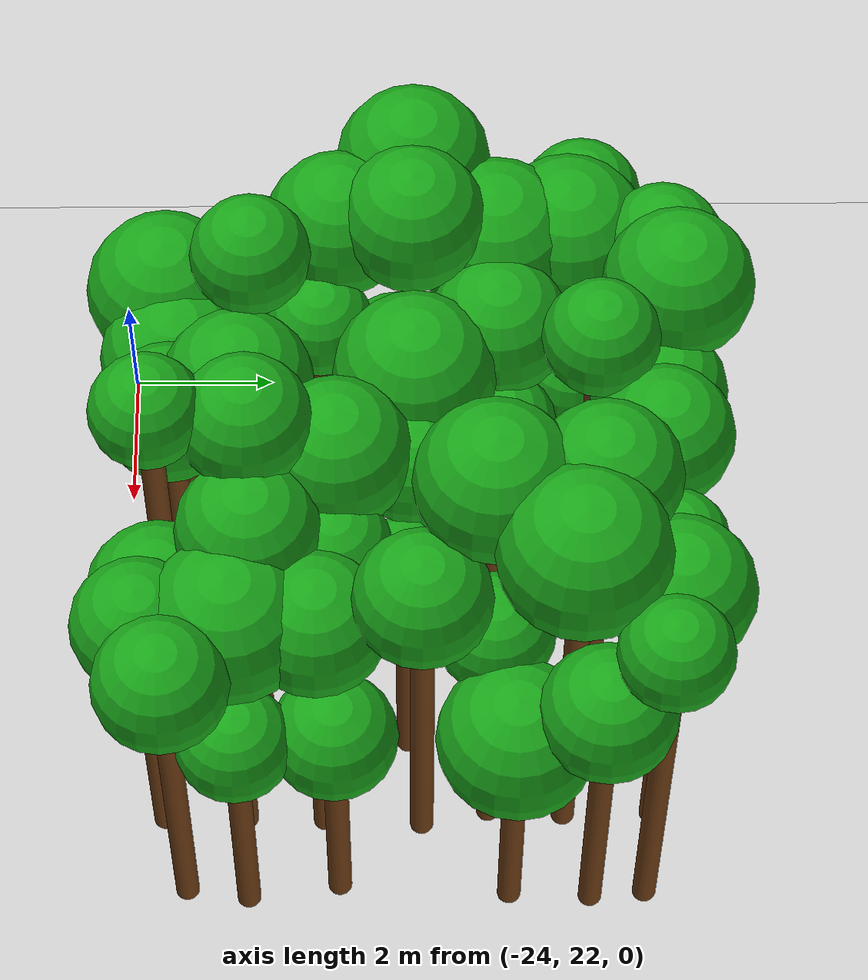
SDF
<sdf version="1.6">
 <world name="forest_world">
  <include><uri>model://sun</uri></include>
  <include><uri>model://ground_plane</uri></include>
  <model name="tree_381_trunk">
   <static>true</static>
   <pose>-23.24 26.11 3.05 0 0 0</pose>
   <link name="link">
    <collision name="collision">
     <geometry><cylinder><radius>0.16</radius><length>6.09</length></cylinder></geometry>
    </collision>
    <visual name="visual">
     <geometry><cylinder><radius>0.16</radius><length>6.09</length></cylinder></geometry>
     <material><ambient>0.35 0.20 0.05 1</ambient><diffuse>0.45 0.25 0.08 1</diffuse></material>
    </visual>
   </link>
  </model>
  <model name="tree_381_leaf">
   <static>true</static>
   <pose>-23.24 26.11 6.71 0 0 0</pose>
   <link name="link">
    <collision name="collision"><geometry><sphere><radius>1.03</radius></sphere></geometry></collision>
    <visual name="visual">
     <geometry><sphere><radius>1.03</radius></sphere></geometry>
     <material><ambient>0.05 0.45 0.05 1</ambient><diffuse>0.10 0.65 0.10 1</diffuse></material>
    </visual>
   </link>
  </model>
  <model name="tree_383_trunk">
   <static>true</static>
   <pose>-23.26 28.36 2.67 0 0 0</pose>
   <link name="link">
    <collision name="collision">
     <geometry><cylinder><radius>0.16</radius><length>5.34</length></cylinder></geometry>
    </collision>
    <visual name="visual">
     <geometry><cylinder><radius>0.16</radius><length>5.34</length></cylinder></geometry>
     <material><ambient>0.35 0.20 0.05 1</ambient><diffuse>0.45 0.25 0.08 1</diffuse></material>
    </visual>
   </link>
  </model>
  <model name="tree_383_leaf">
   <static>true</static>
   <pose>-23.26 28.36 5.83 0 0 0</pose>
   <link name="link">
    <collision name="collision"><geometry><sphere><radius>0.81</radius></sphere></geometry></collision>
    <visual name="visual">
     <geometry><sphere><radius>0.81</radius></sphere></geometry>
     <material><ambient>0.05 0.45 0.05 1</ambient><diffuse>0.10 0.65 0.10 1</diffuse></material>
    </visual>
   </link>
  </model>
  <model name="tree_433_trunk">
   <static>true</static>
   <pose>-22.16 22.80 2.35 0 0 0</pose>
   <link name="link">
    <collision name="collision">
     <geometry><cylinder><radius>0.16</radius><length>4.69</length></cylinder></geometry>
    </collision>
    <visual name="visual">
     <geometry><cylinder><radius>0.16</radius><length>4.69</length></cylinder></geometry>
     <material><ambient>0.35 0.20 0.05 1</ambient><diffuse>0.45 0.25 0.08 1</diffuse></material>
    </visual>
   </link>
  </model>
  <model name="tree_433_leaf">
   <static>true</static>
   <pose>-22.16 22.80 5.33 0 0 0</pose>
   <link name="link">
    <collision name="collision"><geometry><sphere><radius>1.07</radius></sphere></geometry></collision>
    <visual name="visual">
     <geometry><sphere><radius>1.07</radius></sphere></geometry>
     <material><ambient>0.05 0.45 0.05 1</ambient><diffuse>0.10 0.65 0.10 1</diffuse></material>
    </visual>
   </link>
  </model>
  <model name="tree_434_trunk">
   <static>true</static>
   <pose>-22.43 24.03 2.61 0 0 0</pose>
   <link name="link">
    <collision name="collision">
     <geometry><cylinder><radius>0.16</radius><length>5.23</length></cylinder></geometry>
    </collision>
    <visual name="visual">
     <geometry><cylinder><radius>0.16</radius><length>5.23</length></cylinder></geometry>
     <material><ambient>0.35 0.20 0.05 1</ambient><diffuse>0.45 0.25 0.08 1</diffuse></material>
    </visual>
   </link>
  </model>
  <model name="tree_434_leaf">
   <static>true</static>
   <pose>-22.43 24.03 5.72 0 0 0</pose>
   <link name="link">
    <collision name="collision"><geometry><sphere><radius>0.82</radius></sphere></geometry></collision>
    <visual name="visual">
     <geometry><sphere><radius>0.82</radius></sphere></geometry>
     <material><ambient>0.05 0.45 0.05 1</ambient><diffuse>0.10 0.65 0.10 1</diffuse></material>
    </visual>
   </link>
  </model>
  <model name="tree_435_trunk">
   <static>true</static>
   <pose>-22.34 25.12 3.02 0 0 0</pose>
   <link name="link">
    <collision name="collision">
     <geometry><cylinder><radius>0.16</radius><length>6.03</length></cylinder></geometry>
    </collision>
    <visual name="visual">
     <geometry><cylinder><radius>0.16</radius><length>6.03</length></cylinder></geometry>
     <material><ambient>0.35 0.20 0.05 1</ambient><diffuse>0.45 0.25 0.08 1</diffuse></material>
    </visual>
   </link>
  </model>
  <model name="tree_435_leaf">
   <static>true</static>
   <pose>-22.34 25.12 6.61 0 0 0</pose>
   <link name="link">
    <collision name="collision"><geometry><sphere><radius>0.96</radius></sphere></geometry></collision>
    <visual name="visual">
     <geometry><sphere><radius>0.96</radius></sphere></geometry>
     <material><ambient>0.05 0.45 0.05 1</ambient><diffuse>0.10 0.65 0.10 1</diffuse></material>
    </visual>
   </link>
  </model>
  <model name="tree_436_trunk">
   <static>true</static>
   <pose>-22.13 26.09 3.23 0 0 0</pose>
   <link name="link">
    <collision name="collision">
     <geometry><cylinder><radius>0.16</radius><length>6.46</length></cylinder></geometry>
    </collision>
    <visual name="visual">
     <geometry><cylinder><radius>0.16</radius><length>6.46</length></cylinder></geometry>
     <material><ambient>0.35 0.20 0.05 1</ambient><diffuse>0.45 0.25 0.08 1</diffuse></material>
    </visual>
   </link>
  </model>
  <model name="tree_436_leaf">
   <static>true</static>
   <pose>-22.13 26.09 7.03 0 0 0</pose>
   <link name="link">
    <collision name="collision"><geometry><sphere><radius>0.96</radius></sphere></geometry></collision>
    <visual name="visual">
     <geometry><sphere><radius>0.96</radius></sphere></geometry>
     <material><ambient>0.05 0.45 0.05 1</ambient><diffuse>0.10 0.65 0.10 1</diffuse></material>
    </visual>
   </link>
  </model>
  <model name="tree_437_trunk">
   <static>true</static>
   <pose>-22.31 27.19 2.79 0 0 0</pose>
   <link name="link">
    <collision name="collision">
     <geometry><cylinder><radius>0.16</radius><length>5.58</length></cylinder></geometry>
    </collision>
    <visual name="visual">
     <geometry><cylinder><radius>0.16</radius><length>5.58</length></cylinder></geometry>
     <material><ambient>0.35 0.20 0.05 1</ambient><diffuse>0.45 0.25 0.08 1</diffuse></material>
    </visual>
   </link>
  </model>
  <model name="tree_437_leaf">
   <static>true</static>
   <pose>-22.31 27.19 6.24 0 0 0</pose>
   <link name="link">
    <collision name="collision"><geometry><sphere><radius>1.10</radius></sphere></geometry></collision>
    <visual name="visual">
     <geometry><sphere><radius>1.10</radius></sphere></geometry>
     <material><ambient>0.05 0.45 0.05 1</ambient><diffuse>0.10 0.65 0.10 1</diffuse></material>
    </visual>
   </link>
  </model>
  <model name="tree_438_trunk">
   <static>true</static>
   <pose>-22.47 28.15 2.74 0 0 0</pose>
   <link name="link">
    <collision name="collision">
     <geometry><cylinder><radius>0.16</radius><length>5.47</length></cylinder></geometry>
    </collision>
    <visual name="visual">
     <geometry><cylinder><radius>0.16</radius><length>5.47</length></cylinder></geometry>
     <material><ambient>0.35 0.20 0.05 1</ambient><diffuse>0.45 0.25 0.08 1</diffuse></material>
    </visual>
   </link>
  </model>
  <model name="tree_438_leaf">
   <static>true</static>
   <pose>-22.47 28.15 6.12 0 0 0</pose>
   <link name="link">
    <collision name="collision"><geometry><sphere><radius>1.08</radius></sphere></geometry></collision>
    <visual name="visual">
     <geometry><sphere><radius>1.08</radius></sphere></geometry>
     <material><ambient>0.05 0.45 0.05 1</ambient><diffuse>0.10 0.65 0.10 1</diffuse></material>
    </visual>
   </link>
  </model>
  <model name="tree_439_trunk">
   <static>true</static>
   <pose>-22.12 29.37 2.97 0 0 0</pose>
   <link name="link">
    <collision name="collision">
     <geometry><cylinder><radius>0.16</radius><length>5.93</length></cylinder></geometry>
    </collision>
    <visual name="visual">
     <geometry><cylinder><radius>0.16</radius><length>5.93</length></cylinder></geometry>
     <material><ambient>0.35 0.20 0.05 1</ambient><diffuse>0.45 0.25 0.08 1</diffuse></material>
    </visual>
   </link>
  </model>
  <model name="tree_439_leaf">
   <static>true</static>
   <pose>-22.12 29.37 6.42 0 0 0</pose>
   <link name="link">
    <collision name="collision"><geometry><sphere><radius>0.81</radius></sphere></geometry></collision>
    <visual name="visual">
     <geometry><sphere><radius>0.81</radius></sphere></geometry>
     <material><ambient>0.05 0.45 0.05 1</ambient><diffuse>0.10 0.65 0.10 1</diffuse></material>
    </visual>
   </link>
  </model>
  <model name="tree_488_trunk">
   <static>true</static>
   <pose>-21.22 22.96 2.26 0 0 0</pose>
   <link name="link">
    <collision name="collision">
     <geometry><cylinder><radius>0.16</radius><length>4.51</length></cylinder></geometry>
    </collision>
    <visual name="visual">
     <geometry><cylinder><radius>0.16</radius><length>4.51</length></cylinder></geometry>
     <material><ambient>0.35 0.20 0.05 1</ambient><diffuse>0.45 0.25 0.08 1</diffuse></material>
    </visual>
   </link>
  </model>
  <model name="tree_488_leaf">
   <static>true</static>
   <pose>-21.22 22.96 5.13 0 0 0</pose>
   <link name="link">
    <collision name="collision"><geometry><sphere><radius>1.03</radius></sphere></geometry></collision>
    <visual name="visual">
     <geometry><sphere><radius>1.03</radius></sphere></geometry>
     <material><ambient>0.05 0.45 0.05 1</ambient><diffuse>0.10 0.65 0.10 1</diffuse></material>
    </visual>
   </link>
  </model>
  <model name="tree_489_trunk">
   <static>true</static>
   <pose>-21.35 24.01 3.45 0 0 0</pose>
   <link name="link">
    <collision name="collision">
     <geometry><cylinder><radius>0.16</radius><length>6.91</length></cylinder></geometry>
    </collision>
    <visual name="visual">
     <geometry><cylinder><radius>0.16</radius><length>6.91</length></cylinder></geometry>
     <material><ambient>0.35 0.20 0.05 1</ambient><diffuse>0.45 0.25 0.08 1</diffuse></material>
    </visual>
   </link>
  </model>
  <model name="tree_489_leaf">
   <static>true</static>
   <pose>-21.35 24.01 7.37 0 0 0</pose>
   <link name="link">
    <collision name="collision"><geometry><sphere><radius>0.78</radius></sphere></geometry></collision>
    <visual name="visual">
     <geometry><sphere><radius>0.78</radius></sphere></geometry>
     <material><ambient>0.05 0.45 0.05 1</ambient><diffuse>0.10 0.65 0.10 1</diffuse></material>
    </visual>
   </link>
  </model>
  <model name="tree_490_trunk">
   <static>true</static>
   <pose>-21.21 24.87 2.78 0 0 0</pose>
   <link name="link">
    <collision name="collision">
     <geometry><cylinder><radius>0.16</radius><length>5.56</length></cylinder></geometry>
    </collision>
    <visual name="visual">
     <geometry><cylinder><radius>0.16</radius><length>5.56</length></cylinder></geometry>
     <material><ambient>0.35 0.20 0.05 1</ambient><diffuse>0.45 0.25 0.08 1</diffuse></material>
    </visual>
   </link>
  </model>
  <model name="tree_490_leaf">
   <static>true</static>
   <pose>-21.21 24.87 5.98 0 0 0</pose>
   <link name="link">
    <collision name="collision"><geometry><sphere><radius>0.70</radius></sphere></geometry></collision>
    <visual name="visual">
     <geometry><sphere><radius>0.70</radius></sphere></geometry>
     <material><ambient>0.05 0.45 0.05 1</ambient><diffuse>0.10 0.65 0.10 1</diffuse></material>
    </visual>
   </link>
  </model>
  <model name="tree_491_trunk">
   <static>true</static>
   <pose>-21.13 25.93 2.20 0 0 0</pose>
   <link name="link">
    <collision name="collision">
     <geometry><cylinder><radius>0.16</radius><length>4.39</length></cylinder></geometry>
    </collision>
    <visual name="visual">
     <geometry><cylinder><radius>0.16</radius><length>4.39</length></cylinder></geometry>
     <material><ambient>0.35 0.20 0.05 1</ambient><diffuse>0.45 0.25 0.08 1</diffuse></material>
    </visual>
   </link>
  </model>
  <model name="tree_491_leaf">
   <static>true</static>
   <pose>-21.13 25.93 5.00 0 0 0</pose>
   <link name="link">
    <collision name="collision"><geometry><sphere><radius>1.01</radius></sphere></geometry></collision>
    <visual name="visual">
     <geometry><sphere><radius>1.01</radius></sphere></geometry>
     <material><ambient>0.05 0.45 0.05 1</ambient><diffuse>0.10 0.65 0.10 1</diffuse></material>
    </visual>
   </link>
  </model>
  <model name="tree_492_trunk">
   <static>true</static>
   <pose>-21.03 27.20 2.80 0 0 0</pose>
   <link name="link">
    <collision name="collision">
     <geometry><cylinder><radius>0.16</radius><length>5.60</length></cylinder></geometry>
    </collision>
    <visual name="visual">
     <geometry><cylinder><radius>0.16</radius><length>5.60</length></cylinder></geometry>
     <material><ambient>0.35 0.20 0.05 1</ambient><diffuse>0.45 0.25 0.08 1</diffuse></material>
    </visual>
   </link>
  </model>
  <model name="tree_492_leaf">
   <static>true</static>
   <pose>-21.03 27.20 6.16 0 0 0</pose>
   <link name="link">
    <collision name="collision"><geometry><sphere><radius>0.93</radius></sphere></geometry></collision>
    <visual name="visual">
     <geometry><sphere><radius>0.93</radius></sphere></geometry>
     <material><ambient>0.05 0.45 0.05 1</ambient><diffuse>0.10 0.65 0.10 1</diffuse></material>
    </visual>
   </link>
  </model>
  <model name="tree_493_trunk">
   <static>true</static>
   <pose>-21.18 28.23 2.16 0 0 0</pose>
   <link name="link">
    <collision name="collision">
     <geometry><cylinder><radius>0.16</radius><length>4.31</length></cylinder></geometry>
    </collision>
    <visual name="visual">
     <geometry><cylinder><radius>0.16</radius><length>4.31</length></cylinder></geometry>
     <material><ambient>0.35 0.20 0.05 1</ambient><diffuse>0.45 0.25 0.08 1</diffuse></material>
    </visual>
   </link>
  </model>
  <model name="tree_493_leaf">
   <static>true</static>
   <pose>-21.18 28.23 4.76 0 0 0</pose>
   <link name="link">
    <collision name="collision"><geometry><sphere><radius>0.75</radius></sphere></geometry></collision>
    <visual name="visual">
     <geometry><sphere><radius>0.75</radius></sphere></geometry>
     <material><ambient>0.05 0.45 0.05 1</ambient><diffuse>0.10 0.65 0.10 1</diffuse></material>
    </visual>
   </link>
  </model>
  <model name="tree_494_trunk">
   <static>true</static>
   <pose>-21.14 29.50 3.18 0 0 0</pose>
   <link name="link">
    <collision name="collision">
     <geometry><cylinder><radius>0.16</radius><length>6.37</length></cylinder></geometry>
    </collision>
    <visual name="visual">
     <geometry><cylinder><radius>0.16</radius><length>6.37</length></cylinder></geometry>
     <material><ambient>0.35 0.20 0.05 1</ambient><diffuse>0.45 0.25 0.08 1</diffuse></material>
    </visual>
   </link>
  </model>
  <model name="tree_494_leaf">
   <static>true</static>
   <pose>-21.14 29.50 6.96 0 0 0</pose>
   <link name="link">
    <collision name="collision"><geometry><sphere><radius>0.99</radius></sphere></geometry></collision>
    <visual name="visual">
     <geometry><sphere><radius>0.99</radius></sphere></geometry>
     <material><ambient>0.05 0.45 0.05 1</ambient><diffuse>0.10 0.65 0.10 1</diffuse></material>
    </visual>
   </link>
  </model>
  <model name="tree_543_trunk">
   <static>true</static>
   <pose>-20.00 22.92 2.60 0 0 0</pose>
   <link name="link">
    <collision name="collision">
     <geometry><cylinder><radius>0.16</radius><length>5.19</length></cylinder></geometry>
    </collision>
    <visual name="visual">
     <geometry><cylinder><radius>0.16</radius><length>5.19</length></cylinder></geometry>
     <material><ambient>0.35 0.20 0.05 1</ambient><diffuse>0.45 0.25 0.08 1</diffuse></material>
    </visual>
   </link>
  </model>
  <model name="tree_543_leaf">
   <static>true</static>
   <pose>-20.00 22.92 5.74 0 0 0</pose>
   <link name="link">
    <collision name="collision"><geometry><sphere><radius>0.92</radius></sphere></geometry></collision>
    <visual name="visual">
     <geometry><sphere><radius>0.92</radius></sphere></geometry>
     <material><ambient>0.05 0.45 0.05 1</ambient><diffuse>0.10 0.65 0.10 1</diffuse></material>
    </visual>
   </link>
  </model>
  <model name="tree_544_trunk">
   <static>true</static>
   <pose>-20.03 23.84 2.88 0 0 0</pose>
   <link name="link">
    <collision name="collision">
     <geometry><cylinder><radius>0.16</radius><length>5.77</length></cylinder></geometry>
    </collision>
    <visual name="visual">
     <geometry><cylinder><radius>0.16</radius><length>5.77</length></cylinder></geometry>
     <material><ambient>0.35 0.20 0.05 1</ambient><diffuse>0.45 0.25 0.08 1</diffuse></material>
    </visual>
   </link>
  </model>
  <model name="tree_544_leaf">
   <static>true</static>
   <pose>-20.03 23.84 6.36 0 0 0</pose>
   <link name="link">
    <collision name="collision"><geometry><sphere><radius>0.99</radius></sphere></geometry></collision>
    <visual name="visual">
     <geometry><sphere><radius>0.99</radius></sphere></geometry>
     <material><ambient>0.05 0.45 0.05 1</ambient><diffuse>0.10 0.65 0.10 1</diffuse></material>
    </visual>
   </link>
  </model>
  <model name="tree_545_trunk">
   <static>true</static>
   <pose>-20.01 24.87 2.13 0 0 0</pose>
   <link name="link">
    <collision name="collision">
     <geometry><cylinder><radius>0.16</radius><length>4.26</length></cylinder></geometry>
    </collision>
    <visual name="visual">
     <geometry><cylinder><radius>0.16</radius><length>4.26</length></cylinder></geometry>
     <material><ambient>0.35 0.20 0.05 1</ambient><diffuse>0.45 0.25 0.08 1</diffuse></material>
    </visual>
   </link>
  </model>
  <model name="tree_545_leaf">
   <static>true</static>
   <pose>-20.01 24.87 4.71 0 0 0</pose>
   <link name="link">
    <collision name="collision"><geometry><sphere><radius>0.75</radius></sphere></geometry></collision>
    <visual name="visual">
     <geometry><sphere><radius>0.75</radius></sphere></geometry>
     <material><ambient>0.05 0.45 0.05 1</ambient><diffuse>0.10 0.65 0.10 1</diffuse></material>
    </visual>
   </link>
  </model>
  <model name="tree_546_trunk">
   <static>true</static>
   <pose>-20.26 26.11 2.80 0 0 0</pose>
   <link name="link">
    <collision name="collision">
     <geometry><cylinder><radius>0.16</radius><length>5.60</length></cylinder></geometry>
    </collision>
    <visual name="visual">
     <geometry><cylinder><radius>0.16</radius><length>5.60</length></cylinder></geometry>
     <material><ambient>0.35 0.20 0.05 1</ambient><diffuse>0.45 0.25 0.08 1</diffuse></material>
    </visual>
   </link>
  </model>
  <model name="tree_546_leaf">
   <static>true</static>
   <pose>-20.26 26.11 6.24 0 0 0</pose>
   <link name="link">
    <collision name="collision"><geometry><sphere><radius>1.07</radius></sphere></geometry></collision>
    <visual name="visual">
     <geometry><sphere><radius>1.07</radius></sphere></geometry>
     <material><ambient>0.05 0.45 0.05 1</ambient><diffuse>0.10 0.65 0.10 1</diffuse></material>
    </visual>
   </link>
  </model>
  <model name="tree_547_trunk">
   <static>true</static>
   <pose>-20.02 27.16 2.35 0 0 0</pose>
   <link name="link">
    <collision name="collision">
     <geometry><cylinder><radius>0.16</radius><length>4.70</length></cylinder></geometry>
    </collision>
    <visual name="visual">
     <geometry><cylinder><radius>0.16</radius><length>4.70</length></cylinder></geometry>
     <material><ambient>0.35 0.20 0.05 1</ambient><diffuse>0.45 0.25 0.08 1</diffuse></material>
    </visual>
   </link>
  </model>
  <model name="tree_547_leaf">
   <static>true</static>
   <pose>-20.02 27.16 5.20 0 0 0</pose>
   <link name="link">
    <collision name="collision"><geometry><sphere><radius>0.83</radius></sphere></geometry></collision>
    <visual name="visual">
     <geometry><sphere><radius>0.83</radius></sphere></geometry>
     <material><ambient>0.05 0.45 0.05 1</ambient><diffuse>0.10 0.65 0.10 1</diffuse></material>
    </visual>
   </link>
  </model>
  <model name="tree_548_trunk">
   <static>true</static>
   <pose>-20.11 28.46 3.43 0 0 0</pose>
   <link name="link">
    <collision name="collision">
     <geometry><cylinder><radius>0.16</radius><length>6.85</length></cylinder></geometry>
    </collision>
    <visual name="visual">
     <geometry><cylinder><radius>0.16</radius><length>6.85</length></cylinder></geometry>
     <material><ambient>0.35 0.20 0.05 1</ambient><diffuse>0.45 0.25 0.08 1</diffuse></material>
    </visual>
   </link>
  </model>
  <model name="tree_548_leaf">
   <static>true</static>
   <pose>-20.11 28.46 7.31 0 0 0</pose>
   <link name="link">
    <collision name="collision"><geometry><sphere><radius>0.76</radius></sphere></geometry></collision>
    <visual name="visual">
     <geometry><sphere><radius>0.76</radius></sphere></geometry>
     <material><ambient>0.05 0.45 0.05 1</ambient><diffuse>0.10 0.65 0.10 1</diffuse></material>
    </visual>
   </link>
  </model>
  <model name="tree_549_trunk">
   <static>true</static>
   <pose>-20.05 29.25 2.77 0 0 0</pose>
   <link name="link">
    <collision name="collision">
     <geometry><cylinder><radius>0.16</radius><length>5.55</length></cylinder></geometry>
    </collision>
    <visual name="visual">
     <geometry><cylinder><radius>0.16</radius><length>5.55</length></cylinder></geometry>
     <material><ambient>0.35 0.20 0.05 1</ambient><diffuse>0.45 0.25 0.08 1</diffuse></material>
    </visual>
   </link>
  </model>
  <model name="tree_549_leaf">
   <static>true</static>
   <pose>-20.05 29.25 6.09 0 0 0</pose>
   <link name="link">
    <collision name="collision"><geometry><sphere><radius>0.90</radius></sphere></geometry></collision>
    <visual name="visual">
     <geometry><sphere><radius>0.90</radius></sphere></geometry>
     <material><ambient>0.05 0.45 0.05 1</ambient><diffuse>0.10 0.65 0.10 1</diffuse></material>
    </visual>
   </link>
  </model>
  <model name="tree_598_trunk">
   <static>true</static>
   <pose>-18.99 22.76 3.49 0 0 0</pose>
   <link name="link">
    <collision name="collision">
     <geometry><cylinder><radius>0.16</radius><length>6.99</length></cylinder></geometry>
    </collision>
    <visual name="visual">
     <geometry><cylinder><radius>0.16</radius><length>6.99</length></cylinder></geometry>
     <material><ambient>0.35 0.20 0.05 1</ambient><diffuse>0.45 0.25 0.08 1</diffuse></material>
    </visual>
   </link>
  </model>
  <model name="tree_598_leaf">
   <static>true</static>
   <pose>-18.99 22.76 7.43 0 0 0</pose>
   <link name="link">
    <collision name="collision"><geometry><sphere><radius>0.74</radius></sphere></geometry></collision>
    <visual name="visual">
     <geometry><sphere><radius>0.74</radius></sphere></geometry>
     <material><ambient>0.05 0.45 0.05 1</ambient><diffuse>0.10 0.65 0.10 1</diffuse></material>
    </visual>
   </link>
  </model>
  <model name="tree_599_trunk">
   <static>true</static>
   <pose>-19.00 23.97 3.32 0 0 0</pose>
   <link name="link">
    <collision name="collision">
     <geometry><cylinder><radius>0.16</radius><length>6.64</length></cylinder></geometry>
    </collision>
    <visual name="visual">
     <geometry><cylinder><radius>0.16</radius><length>6.64</length></cylinder></geometry>
     <material><ambient>0.35 0.20 0.05 1</ambient><diffuse>0.45 0.25 0.08 1</diffuse></material>
    </visual>
   </link>
  </model>
  <model name="tree_599_leaf">
   <static>true</static>
   <pose>-19.00 23.97 7.16 0 0 0</pose>
   <link name="link">
    <collision name="collision"><geometry><sphere><radius>0.87</radius></sphere></geometry></collision>
    <visual name="visual">
     <geometry><sphere><radius>0.87</radius></sphere></geometry>
     <material><ambient>0.05 0.45 0.05 1</ambient><diffuse>0.10 0.65 0.10 1</diffuse></material>
    </visual>
   </link>
  </model>
  <model name="tree_600_trunk">
   <static>true</static>
   <pose>-18.99 25.10 2.89 0 0 0</pose>
   <link name="link">
    <collision name="collision">
     <geometry><cylinder><radius>0.16</radius><length>5.79</length></cylinder></geometry>
    </collision>
    <visual name="visual">
     <geometry><cylinder><radius>0.16</radius><length>5.79</length></cylinder></geometry>
     <material><ambient>0.35 0.20 0.05 1</ambient><diffuse>0.45 0.25 0.08 1</diffuse></material>
    </visual>
   </link>
  </model>
  <model name="tree_600_leaf">
   <static>true</static>
   <pose>-18.99 25.10 6.38 0 0 0</pose>
   <link name="link">
    <collision name="collision"><geometry><sphere><radius>0.99</radius></sphere></geometry></collision>
    <visual name="visual">
     <geometry><sphere><radius>0.99</radius></sphere></geometry>
     <material><ambient>0.05 0.45 0.05 1</ambient><diffuse>0.10 0.65 0.10 1</diffuse></material>
    </visual>
   </link>
  </model>
  <model name="tree_601_trunk">
   <static>true</static>
   <pose>-19.14 26.06 2.70 0 0 0</pose>
   <link name="link">
    <collision name="collision">
     <geometry><cylinder><radius>0.16</radius><length>5.40</length></cylinder></geometry>
    </collision>
    <visual name="visual">
     <geometry><cylinder><radius>0.16</radius><length>5.40</length></cylinder></geometry>
     <material><ambient>0.35 0.20 0.05 1</ambient><diffuse>0.45 0.25 0.08 1</diffuse></material>
    </visual>
   </link>
  </model>
  <model name="tree_601_leaf">
   <static>true</static>
   <pose>-19.14 26.06 5.88 0 0 0</pose>
   <link name="link">
    <collision name="collision"><geometry><sphere><radius>0.80</radius></sphere></geometry></collision>
    <visual name="visual">
     <geometry><sphere><radius>0.80</radius></sphere></geometry>
     <material><ambient>0.05 0.45 0.05 1</ambient><diffuse>0.10 0.65 0.10 1</diffuse></material>
    </visual>
   </link>
  </model>
  <model name="tree_602_trunk">
   <static>true</static>
   <pose>-18.82 27.03 2.31 0 0 0</pose>
   <link name="link">
    <collision name="collision">
     <geometry><cylinder><radius>0.16</radius><length>4.63</length></cylinder></geometry>
    </collision>
    <visual name="visual">
     <geometry><cylinder><radius>0.16</radius><length>4.63</length></cylinder></geometry>
     <material><ambient>0.35 0.20 0.05 1</ambient><diffuse>0.45 0.25 0.08 1</diffuse></material>
    </visual>
   </link>
  </model>
  <model name="tree_602_leaf">
   <static>true</static>
   <pose>-18.82 27.03 5.26 0 0 0</pose>
   <link name="link">
    <collision name="collision"><geometry><sphere><radius>1.05</radius></sphere></geometry></collision>
    <visual name="visual">
     <geometry><sphere><radius>1.05</radius></sphere></geometry>
     <material><ambient>0.05 0.45 0.05 1</ambient><diffuse>0.10 0.65 0.10 1</diffuse></material>
    </visual>
   </link>
  </model>
  <model name="tree_603_trunk">
   <static>true</static>
   <pose>-18.92 28.47 2.68 0 0 0</pose>
   <link name="link">
    <collision name="collision">
     <geometry><cylinder><radius>0.16</radius><length>5.37</length></cylinder></geometry>
    </collision>
    <visual name="visual">
     <geometry><cylinder><radius>0.16</radius><length>5.37</length></cylinder></geometry>
     <material><ambient>0.35 0.20 0.05 1</ambient><diffuse>0.45 0.25 0.08 1</diffuse></material>
    </visual>
   </link>
  </model>
  <model name="tree_603_leaf">
   <static>true</static>
   <pose>-18.92 28.47 5.86 0 0 0</pose>
   <link name="link">
    <collision name="collision"><geometry><sphere><radius>0.82</radius></sphere></geometry></collision>
    <visual name="visual">
     <geometry><sphere><radius>0.82</radius></sphere></geometry>
     <material><ambient>0.05 0.45 0.05 1</ambient><diffuse>0.10 0.65 0.10 1</diffuse></material>
    </visual>
   </link>
  </model>
  <model name="tree_604_trunk">
   <static>true</static>
   <pose>-19.13 29.26 3.00 0 0 0</pose>
   <link name="link">
    <collision name="collision">
     <geometry><cylinder><radius>0.16</radius><length>6.00</length></cylinder></geometry>
    </collision>
    <visual name="visual">
     <geometry><cylinder><radius>0.16</radius><length>6.00</length></cylinder></geometry>
     <material><ambient>0.35 0.20 0.05 1</ambient><diffuse>0.45 0.25 0.08 1</diffuse></material>
    </visual>
   </link>
  </model>
  <model name="tree_604_leaf">
   <static>true</static>
   <pose>-19.13 29.26 6.54 0 0 0</pose>
   <link name="link">
    <collision name="collision"><geometry><sphere><radius>0.91</radius></sphere></geometry></collision>
    <visual name="visual">
     <geometry><sphere><radius>0.91</radius></sphere></geometry>
     <material><ambient>0.05 0.45 0.05 1</ambient><diffuse>0.10 0.65 0.10 1</diffuse></material>
    </visual>
   </link>
  </model>
  <model name="tree_653_trunk">
   <static>true</static>
   <pose>-17.79 22.80 2.14 0 0 0</pose>
   <link name="link">
    <collision name="collision">
     <geometry><cylinder><radius>0.16</radius><length>4.29</length></cylinder></geometry>
    </collision>
    <visual name="visual">
     <geometry><cylinder><radius>0.16</radius><length>4.29</length></cylinder></geometry>
     <material><ambient>0.35 0.20 0.05 1</ambient><diffuse>0.45 0.25 0.08 1</diffuse></material>
    </visual>
   </link>
  </model>
  <model name="tree_653_leaf">
   <static>true</static>
   <pose>-17.79 22.80 4.87 0 0 0</pose>
   <link name="link">
    <collision name="collision"><geometry><sphere><radius>0.96</radius></sphere></geometry></collision>
    <visual name="visual">
     <geometry><sphere><radius>0.96</radius></sphere></geometry>
     <material><ambient>0.05 0.45 0.05 1</ambient><diffuse>0.10 0.65 0.10 1</diffuse></material>
    </visual>
   </link>
  </model>
  <model name="tree_654_trunk">
   <static>true</static>
   <pose>-17.91 24.00 2.87 0 0 0</pose>
   <link name="link">
    <collision name="collision">
     <geometry><cylinder><radius>0.16</radius><length>5.74</length></cylinder></geometry>
    </collision>
    <visual name="visual">
     <geometry><cylinder><radius>0.16</radius><length>5.74</length></cylinder></geometry>
     <material><ambient>0.35 0.20 0.05 1</ambient><diffuse>0.45 0.25 0.08 1</diffuse></material>
    </visual>
   </link>
  </model>
  <model name="tree_654_leaf">
   <static>true</static>
   <pose>-17.91 24.00 6.31 0 0 0</pose>
   <link name="link">
    <collision name="collision"><geometry><sphere><radius>0.94</radius></sphere></geometry></collision>
    <visual name="visual">
     <geometry><sphere><radius>0.94</radius></sphere></geometry>
     <material><ambient>0.05 0.45 0.05 1</ambient><diffuse>0.10 0.65 0.10 1</diffuse></material>
    </visual>
   </link>
  </model>
  <model name="tree_655_trunk">
   <static>true</static>
   <pose>-17.95 25.07 2.66 0 0 0</pose>
   <link name="link">
    <collision name="collision">
     <geometry><cylinder><radius>0.16</radius><length>5.32</length></cylinder></geometry>
    </collision>
    <visual name="visual">
     <geometry><cylinder><radius>0.16</radius><length>5.32</length></cylinder></geometry>
     <material><ambient>0.35 0.20 0.05 1</ambient><diffuse>0.45 0.25 0.08 1</diffuse></material>
    </visual>
   </link>
  </model>
  <model name="tree_655_leaf">
   <static>true</static>
   <pose>-17.95 25.07 5.77 0 0 0</pose>
   <link name="link">
    <collision name="collision"><geometry><sphere><radius>0.75</radius></sphere></geometry></collision>
    <visual name="visual">
     <geometry><sphere><radius>0.75</radius></sphere></geometry>
     <material><ambient>0.05 0.45 0.05 1</ambient><diffuse>0.10 0.65 0.10 1</diffuse></material>
    </visual>
   </link>
  </model>
  <model name="tree_656_trunk">
   <static>true</static>
   <pose>-18.03 26.00 2.30 0 0 0</pose>
   <link name="link">
    <collision name="collision">
     <geometry><cylinder><radius>0.16</radius><length>4.60</length></cylinder></geometry>
    </collision>
    <visual name="visual">
     <geometry><cylinder><radius>0.16</radius><length>4.60</length></cylinder></geometry>
     <material><ambient>0.35 0.20 0.05 1</ambient><diffuse>0.45 0.25 0.08 1</diffuse></material>
    </visual>
   </link>
  </model>
  <model name="tree_656_leaf">
   <static>true</static>
   <pose>-18.03 26.00 5.04 0 0 0</pose>
   <link name="link">
    <collision name="collision"><geometry><sphere><radius>0.72</radius></sphere></geometry></collision>
    <visual name="visual">
     <geometry><sphere><radius>0.72</radius></sphere></geometry>
     <material><ambient>0.05 0.45 0.05 1</ambient><diffuse>0.10 0.65 0.10 1</diffuse></material>
    </visual>
   </link>
  </model>
  <model name="tree_657_trunk">
   <static>true</static>
   <pose>-17.89 27.09 3.46 0 0 0</pose>
   <link name="link">
    <collision name="collision">
     <geometry><cylinder><radius>0.16</radius><length>6.91</length></cylinder></geometry>
    </collision>
    <visual name="visual">
     <geometry><cylinder><radius>0.16</radius><length>6.91</length></cylinder></geometry>
     <material><ambient>0.35 0.20 0.05 1</ambient><diffuse>0.45 0.25 0.08 1</diffuse></material>
    </visual>
   </link>
  </model>
  <model name="tree_657_leaf">
   <static>true</static>
   <pose>-17.89 27.09 7.54 0 0 0</pose>
   <link name="link">
    <collision name="collision"><geometry><sphere><radius>1.04</radius></sphere></geometry></collision>
    <visual name="visual">
     <geometry><sphere><radius>1.04</radius></sphere></geometry>
     <material><ambient>0.05 0.45 0.05 1</ambient><diffuse>0.10 0.65 0.10 1</diffuse></material>
    </visual>
   </link>
  </model>
  <model name="tree_658_trunk">
   <static>true</static>
   <pose>-18.02 28.46 3.43 0 0 0</pose>
   <link name="link">
    <collision name="collision">
     <geometry><cylinder><radius>0.16</radius><length>6.86</length></cylinder></geometry>
    </collision>
    <visual name="visual">
     <geometry><cylinder><radius>0.16</radius><length>6.86</length></cylinder></geometry>
     <material><ambient>0.35 0.20 0.05 1</ambient><diffuse>0.45 0.25 0.08 1</diffuse></material>
    </visual>
   </link>
  </model>
  <model name="tree_658_leaf">
   <static>true</static>
   <pose>-18.02 28.46 7.43 0 0 0</pose>
   <link name="link">
    <collision name="collision"><geometry><sphere><radius>0.96</radius></sphere></geometry></collision>
    <visual name="visual">
     <geometry><sphere><radius>0.96</radius></sphere></geometry>
     <material><ambient>0.05 0.45 0.05 1</ambient><diffuse>0.10 0.65 0.10 1</diffuse></material>
    </visual>
   </link>
  </model>
  <model name="tree_659_trunk">
   <static>true</static>
   <pose>-17.75 29.35 2.88 0 0 0</pose>
   <link name="link">
    <collision name="collision">
     <geometry><cylinder><radius>0.16</radius><length>5.77</length></cylinder></geometry>
    </collision>
    <visual name="visual">
     <geometry><cylinder><radius>0.16</radius><length>5.77</length></cylinder></geometry>
     <material><ambient>0.35 0.20 0.05 1</ambient><diffuse>0.45 0.25 0.08 1</diffuse></material>
    </visual>
   </link>
  </model>
  <model name="tree_659_leaf">
   <static>true</static>
   <pose>-17.75 29.35 6.20 0 0 0</pose>
   <link name="link">
    <collision name="collision"><geometry><sphere><radius>0.71</radius></sphere></geometry></collision>
    <visual name="visual">
     <geometry><sphere><radius>0.71</radius></sphere></geometry>
     <material><ambient>0.05 0.45 0.05 1</ambient><diffuse>0.10 0.65 0.10 1</diffuse></material>
    </visual>
   </link>
  </model>
  <model name="tree_708_trunk">
   <static>true</static>
   <pose>-16.86 22.62 2.62 0 0 0</pose>
   <link name="link">
    <collision name="collision">
     <geometry><cylinder><radius>0.16</radius><length>5.23</length></cylinder></geometry>
    </collision>
    <visual name="visual">
     <geometry><cylinder><radius>0.16</radius><length>5.23</length></cylinder></geometry>
     <material><ambient>0.35 0.20 0.05 1</ambient><diffuse>0.45 0.25 0.08 1</diffuse></material>
    </visual>
   </link>
  </model>
  <model name="tree_708_leaf">
   <static>true</static>
   <pose>-16.86 22.62 5.76 0 0 0</pose>
   <link name="link">
    <collision name="collision"><geometry><sphere><radius>0.88</radius></sphere></geometry></collision>
    <visual name="visual">
     <geometry><sphere><radius>0.88</radius></sphere></geometry>
     <material><ambient>0.05 0.45 0.05 1</ambient><diffuse>0.10 0.65 0.10 1</diffuse></material>
    </visual>
   </link>
  </model>
  <model name="tree_709_trunk">
   <static>true</static>
   <pose>-16.86 23.75 2.62 0 0 0</pose>
   <link name="link">
    <collision name="collision">
     <geometry><cylinder><radius>0.16</radius><length>5.25</length></cylinder></geometry>
    </collision>
    <visual name="visual">
     <geometry><cylinder><radius>0.16</radius><length>5.25</length></cylinder></geometry>
     <material><ambient>0.35 0.20 0.05 1</ambient><diffuse>0.45 0.25 0.08 1</diffuse></material>
    </visual>
   </link>
  </model>
  <model name="tree_709_leaf">
   <static>true</static>
   <pose>-16.86 23.75 5.89 0 0 0</pose>
   <link name="link">
    <collision name="collision"><geometry><sphere><radius>1.08</radius></sphere></geometry></collision>
    <visual name="visual">
     <geometry><sphere><radius>1.08</radius></sphere></geometry>
     <material><ambient>0.05 0.45 0.05 1</ambient><diffuse>0.10 0.65 0.10 1</diffuse></material>
    </visual>
   </link>
  </model>
  <model name="tree_710_trunk">
   <static>true</static>
   <pose>-16.83 24.84 2.63 0 0 0</pose>
   <link name="link">
    <collision name="collision">
     <geometry><cylinder><radius>0.16</radius><length>5.27</length></cylinder></geometry>
    </collision>
    <visual name="visual">
     <geometry><cylinder><radius>0.16</radius><length>5.27</length></cylinder></geometry>
     <material><ambient>0.35 0.20 0.05 1</ambient><diffuse>0.45 0.25 0.08 1</diffuse></material>
    </visual>
   </link>
  </model>
  <model name="tree_710_leaf">
   <static>true</static>
   <pose>-16.83 24.84 5.83 0 0 0</pose>
   <link name="link">
    <collision name="collision"><geometry><sphere><radius>0.94</radius></sphere></geometry></collision>
    <visual name="visual">
     <geometry><sphere><radius>0.94</radius></sphere></geometry>
     <material><ambient>0.05 0.45 0.05 1</ambient><diffuse>0.10 0.65 0.10 1</diffuse></material>
    </visual>
   </link>
  </model>
  <model name="tree_711_trunk">
   <static>true</static>
   <pose>-16.76 26.18 3.04 0 0 0</pose>
   <link name="link">
    <collision name="collision">
     <geometry><cylinder><radius>0.16</radius><length>6.07</length></cylinder></geometry>
    </collision>
    <visual name="visual">
     <geometry><cylinder><radius>0.16</radius><length>6.07</length></cylinder></geometry>
     <material><ambient>0.35 0.20 0.05 1</ambient><diffuse>0.45 0.25 0.08 1</diffuse></material>
    </visual>
   </link>
  </model>
  <model name="tree_711_leaf">
   <static>true</static>
   <pose>-16.76 26.18 6.61 0 0 0</pose>
   <link name="link">
    <collision name="collision"><geometry><sphere><radius>0.89</radius></sphere></geometry></collision>
    <visual name="visual">
     <geometry><sphere><radius>0.89</radius></sphere></geometry>
     <material><ambient>0.05 0.45 0.05 1</ambient><diffuse>0.10 0.65 0.10 1</diffuse></material>
    </visual>
   </link>
  </model>
  <model name="tree_712_trunk">
   <static>true</static>
   <pose>-16.95 27.10 2.44 0 0 0</pose>
   <link name="link">
    <collision name="collision">
     <geometry><cylinder><radius>0.16</radius><length>4.87</length></cylinder></geometry>
    </collision>
    <visual name="visual">
     <geometry><cylinder><radius>0.16</radius><length>4.87</length></cylinder></geometry>
     <material><ambient>0.35 0.20 0.05 1</ambient><diffuse>0.45 0.25 0.08 1</diffuse></material>
    </visual>
   </link>
  </model>
  <model name="tree_712_leaf">
   <static>true</static>
   <pose>-16.95 27.10 5.34 0 0 0</pose>
   <link name="link">
    <collision name="collision"><geometry><sphere><radius>0.78</radius></sphere></geometry></collision>
    <visual name="visual">
     <geometry><sphere><radius>0.78</radius></sphere></geometry>
     <material><ambient>0.05 0.45 0.05 1</ambient><diffuse>0.10 0.65 0.10 1</diffuse></material>
    </visual>
   </link>
  </model>
  <model name="tree_713_trunk">
   <static>true</static>
   <pose>-16.89 28.14 3.43 0 0 0</pose>
   <link name="link">
    <collision name="collision">
     <geometry><cylinder><radius>0.16</radius><length>6.87</length></cylinder></geometry>
    </collision>
    <visual name="visual">
     <geometry><cylinder><radius>0.16</radius><length>6.87</length></cylinder></geometry>
     <material><ambient>0.35 0.20 0.05 1</ambient><diffuse>0.45 0.25 0.08 1</diffuse></material>
    </visual>
   </link>
  </model>
  <model name="tree_713_leaf">
   <static>true</static>
   <pose>-16.89 28.14 7.53 0 0 0</pose>
   <link name="link">
    <collision name="collision"><geometry><sphere><radius>1.10</radius></sphere></geometry></collision>
    <visual name="visual">
     <geometry><sphere><radius>1.10</radius></sphere></geometry>
     <material><ambient>0.05 0.45 0.05 1</ambient><diffuse>0.10 0.65 0.10 1</diffuse></material>
    </visual>
   </link>
  </model>
  <model name="tree_714_trunk">
   <static>true</static>
   <pose>-16.91 29.37 2.95 0 0 0</pose>
   <link name="link">
    <collision name="collision">
     <geometry><cylinder><radius>0.16</radius><length>5.91</length></cylinder></geometry>
    </collision>
    <visual name="visual">
     <geometry><cylinder><radius>0.16</radius><length>5.91</length></cylinder></geometry>
     <material><ambient>0.35 0.20 0.05 1</ambient><diffuse>0.45 0.25 0.08 1</diffuse></material>
    </visual>
   </link>
  </model>
  <model name="tree_714_leaf">
   <static>true</static>
   <pose>-16.91 29.37 6.49 0 0 0</pose>
   <link name="link">
    <collision name="collision"><geometry><sphere><radius>0.97</radius></sphere></geometry></collision>
    <visual name="visual">
     <geometry><sphere><radius>0.97</radius></sphere></geometry>
     <material><ambient>0.05 0.45 0.05 1</ambient><diffuse>0.10 0.65 0.10 1</diffuse></material>
    </visual>
   </link>
  </model>
  <model name="tree_763_trunk">
   <static>true</static>
   <pose>-15.79 22.95 2.85 0 0 0</pose>
   <link name="link">
    <collision name="collision">
     <geometry><cylinder><radius>0.16</radius><length>5.70</length></cylinder></geometry>
    </collision>
    <visual name="visual">
     <geometry><cylinder><radius>0.16</radius><length>5.70</length></cylinder></geometry>
     <material><ambient>0.35 0.20 0.05 1</ambient><diffuse>0.45 0.25 0.08 1</diffuse></material>
    </visual>
   </link>
  </model>
  <model name="tree_763_leaf">
   <static>true</static>
   <pose>-15.79 22.95 6.23 0 0 0</pose>
   <link name="link">
    <collision name="collision"><geometry><sphere><radius>0.87</radius></sphere></geometry></collision>
    <visual name="visual">
     <geometry><sphere><radius>0.87</radius></sphere></geometry>
     <material><ambient>0.05 0.45 0.05 1</ambient><diffuse>0.10 0.65 0.10 1</diffuse></material>
    </visual>
   </link>
  </model>
  <model name="tree_764_trunk">
   <static>true</static>
   <pose>-15.67 23.80 2.18 0 0 0</pose>
   <link name="link">
    <collision name="collision">
     <geometry><cylinder><radius>0.16</radius><length>4.36</length></cylinder></geometry>
    </collision>
    <visual name="visual">
     <geometry><cylinder><radius>0.16</radius><length>4.36</length></cylinder></geometry>
     <material><ambient>0.35 0.20 0.05 1</ambient><diffuse>0.45 0.25 0.08 1</diffuse></material>
    </visual>
   </link>
  </model>
  <model name="tree_764_leaf">
   <static>true</static>
   <pose>-15.67 23.80 4.82 0 0 0</pose>
   <link name="link">
    <collision name="collision"><geometry><sphere><radius>0.76</radius></sphere></geometry></collision>
    <visual name="visual">
     <geometry><sphere><radius>0.76</radius></sphere></geometry>
     <material><ambient>0.05 0.45 0.05 1</ambient><diffuse>0.10 0.65 0.10 1</diffuse></material>
    </visual>
   </link>
  </model>
  <model name="tree_765_trunk">
   <static>true</static>
   <pose>-15.85 25.05 2.07 0 0 0</pose>
   <link name="link">
    <collision name="collision">
     <geometry><cylinder><radius>0.16</radius><length>4.15</length></cylinder></geometry>
    </collision>
    <visual name="visual">
     <geometry><cylinder><radius>0.16</radius><length>4.15</length></cylinder></geometry>
     <material><ambient>0.35 0.20 0.05 1</ambient><diffuse>0.45 0.25 0.08 1</diffuse></material>
    </visual>
   </link>
  </model>
  <model name="tree_765_leaf">
   <static>true</static>
   <pose>-15.85 25.05 4.64 0 0 0</pose>
   <link name="link">
    <collision name="collision"><geometry><sphere><radius>0.83</radius></sphere></geometry></collision>
    <visual name="visual">
     <geometry><sphere><radius>0.83</radius></sphere></geometry>
     <material><ambient>0.05 0.45 0.05 1</ambient><diffuse>0.10 0.65 0.10 1</diffuse></material>
    </visual>
   </link>
  </model>
  <model name="tree_767_trunk">
   <static>true</static>
   <pose>-15.71 27.37 2.10 0 0 0</pose>
   <link name="link">
    <collision name="collision">
     <geometry><cylinder><radius>0.16</radius><length>4.20</length></cylinder></geometry>
    </collision>
    <visual name="visual">
     <geometry><cylinder><radius>0.16</radius><length>4.20</length></cylinder></geometry>
     <material><ambient>0.35 0.20 0.05 1</ambient><diffuse>0.45 0.25 0.08 1</diffuse></material>
    </visual>
   </link>
  </model>
  <model name="tree_767_leaf">
   <static>true</static>
   <pose>-15.71 27.37 4.82 0 0 0</pose>
   <link name="link">
    <collision name="collision"><geometry><sphere><radius>1.04</radius></sphere></geometry></collision>
    <visual name="visual">
     <geometry><sphere><radius>1.04</radius></sphere></geometry>
     <material><ambient>0.05 0.45 0.05 1</ambient><diffuse>0.10 0.65 0.10 1</diffuse></material>
    </visual>
   </link>
  </model>
  <model name="tree_768_trunk">
   <static>true</static>
   <pose>-15.66 28.48 2.55 0 0 0</pose>
   <link name="link">
    <collision name="collision">
     <geometry><cylinder><radius>0.16</radius><length>5.10</length></cylinder></geometry>
    </collision>
    <visual name="visual">
     <geometry><cylinder><radius>0.16</radius><length>5.10</length></cylinder></geometry>
     <material><ambient>0.35 0.20 0.05 1</ambient><diffuse>0.45 0.25 0.08 1</diffuse></material>
    </visual>
   </link>
  </model>
  <model name="tree_768_leaf">
   <static>true</static>
   <pose>-15.66 28.48 5.63 0 0 0</pose>
   <link name="link">
    <collision name="collision"><geometry><sphere><radius>0.89</radius></sphere></geometry></collision>
    <visual name="visual">
     <geometry><sphere><radius>0.89</radius></sphere></geometry>
     <material><ambient>0.05 0.45 0.05 1</ambient><diffuse>0.10 0.65 0.10 1</diffuse></material>
    </visual>
   </link>
  </model>
  <model name="tree_769_trunk">
   <static>true</static>
   <pose>-15.72 29.23 3.34 0 0 0</pose>
   <link name="link">
    <collision name="collision">
     <geometry><cylinder><radius>0.16</radius><length>6.67</length></cylinder></geometry>
    </collision>
    <visual name="visual">
     <geometry><cylinder><radius>0.16</radius><length>6.67</length></cylinder></geometry>
     <material><ambient>0.35 0.20 0.05 1</ambient><diffuse>0.45 0.25 0.08 1</diffuse></material>
    </visual>
   </link>
  </model>
  <model name="tree_769_leaf">
   <static>true</static>
   <pose>-15.72 29.23 7.11 0 0 0</pose>
   <link name="link">
    <collision name="collision"><geometry><sphere><radius>0.73</radius></sphere></geometry></collision>
    <visual name="visual">
     <geometry><sphere><radius>0.73</radius></sphere></geometry>
     <material><ambient>0.05 0.45 0.05 1</ambient><diffuse>0.10 0.65 0.10 1</diffuse></material>
    </visual>
   </link>
  </model>
 </world>
</sdf>
